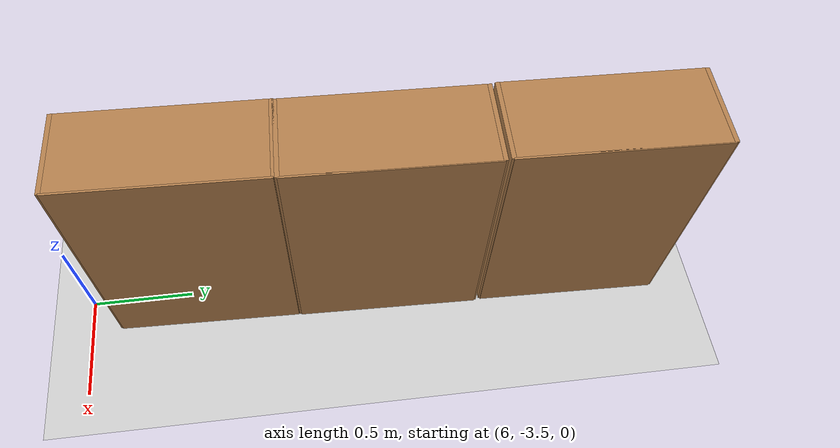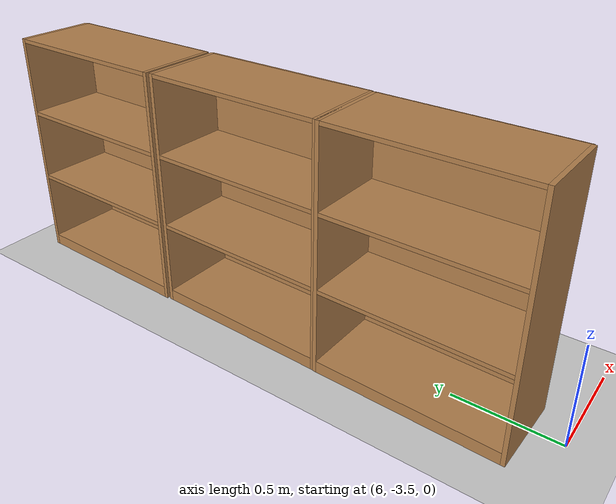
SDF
<sdf version="1.7">
 <world name="default">
  <model name="ground_plane">
   <static>1</static>
   <link name="link">
    <collision name="collision">
     <geometry><plane><normal>0 0 1</normal><size>100 100</size></plane></geometry>
     <surface>
      <contact><collide_bitmask>65535</collide_bitmask></contact>
      <friction><ode><mu>100</mu><mu2>50</mu2></ode></friction>
     </surface>
    </collision>
    <visual name="visual">
     <cast_shadows>0</cast_shadows>
     <geometry><plane><normal>0 0 1</normal><size>100 100</size></plane></geometry>
     <material>
      <script><uri>file://media/materials/scripts/gazebo.material</uri><name>Gazebo/Grey</name></script>
     </material>
    </visual>
   </link>
  </model>
  <model name="Bookshelf_clone">
   <static>1</static>
   <link name="link">
    <inertial><mass>1</mass></inertial>
    <collision name="back">
     <pose>0 0.005 0.6 0 -0 0</pose>
     <geometry><box><size>0.9 0.01 1.2</size></box></geometry>
    </collision>
    <visual name="visual1">
     <pose>0 0.005 0.6 0 -0 0</pose>
     <geometry><box><size>0.9 0.01 1.2</size></box></geometry>
     <material>
      <diffuse>1 1 1 1</diffuse>
      <script><uri>file://media/materials/scripts/gazebo.material</uri><name>Gazebo/Wood</name></script>
      <pbr>
       <metal>
        <albedo_map>https://fuel.ignitionrobotics.org/1.0/openrobotics/models/bookshelf/3/files/bookshelf_diffuse.jpg</albedo_map>
       </metal>
      </pbr>
     </material>
    </visual>
    <collision name="left_side">
     <pose>0.45 -0.195 0.6 0 -0 0</pose>
     <geometry><box><size>0.02 0.4 1.2</size></box></geometry>
    </collision>
    <visual name="visual2">
     <pose>0.45 -0.195 0.6 0 -0 0</pose>
     <geometry><box><size>0.02 0.4 1.2</size></box></geometry>
     <material>
      <diffuse>1 1 1 1</diffuse>
      <script><uri>file://media/materials/scripts/gazebo.material</uri><name>Gazebo/Wood</name></script>
      <pbr>
       <metal>
        <albedo_map>https://fuel.ignitionrobotics.org/1.0/openrobotics/models/bookshelf/3/files/bookshelf_diffuse.jpg</albedo_map>
       </metal>
      </pbr>
     </material>
    </visual>
    <collision name="right_side">
     <pose>-0.45 -0.195 0.6 0 -0 0</pose>
     <geometry><box><size>0.02 0.4 1.2</size></box></geometry>
    </collision>
    <visual name="visual3">
     <pose>-0.45 -0.195 0.6 0 -0 0</pose>
     <geometry><box><size>0.02 0.4 1.2</size></box></geometry>
     <material>
      <diffuse>1 1 1 1</diffuse>
      <script><uri>file://media/materials/scripts/gazebo.material</uri><name>Gazebo/Wood</name></script>
      <pbr>
       <metal>
        <albedo_map>https://fuel.ignitionrobotics.org/1.0/openrobotics/models/bookshelf/3/files/bookshelf_diffuse.jpg</albedo_map>
       </metal>
      </pbr>
     </material>
    </visual>
    <collision name="bottom">
     <pose>0 -0.195 0.03 0 -0 0</pose>
     <geometry><box><size>0.88 0.4 0.06</size></box></geometry>
    </collision>
    <visual name="visual4">
     <pose>0 -0.195 0.03 0 -0 0</pose>
     <geometry><box><size>0.88 0.4 0.06</size></box></geometry>
     <material>
      <diffuse>1 1 1 1</diffuse>
      <script><uri>file://media/materials/scripts/gazebo.material</uri><name>Gazebo/Wood</name></script>
      <pbr>
       <metal>
        <albedo_map>https://fuel.ignitionrobotics.org/1.0/openrobotics/models/bookshelf/3/files/bookshelf_diffuse.jpg</albedo_map>
       </metal>
      </pbr>
     </material>
    </visual>
    <collision name="top">
     <pose>0 -0.195 1.19 0 -0 0</pose>
     <geometry><box><size>0.88 0.4 0.02</size></box></geometry>
    </collision>
    <visual name="visual5">
     <pose>0 -0.195 1.19 0 -0 0</pose>
     <geometry><box><size>0.88 0.4 0.02</size></box></geometry>
     <material>
      <diffuse>1 1 1 1</diffuse>
      <script><uri>file://media/materials/scripts/gazebo.material</uri><name>Gazebo/Wood</name></script>
      <pbr>
       <metal>
        <albedo_map>https://fuel.ignitionrobotics.org/1.0/openrobotics/models/bookshelf/3/files/bookshelf_diffuse.jpg</albedo_map>
       </metal>
      </pbr>
     </material>
    </visual>
    <collision name="low_shelf">
     <pose>0 -0.195 0.43 0 -0 0</pose>
     <geometry><box><size>0.88 0.4 0.02</size></box></geometry>
    </collision>
    <visual name="visual6">
     <pose>0 -0.195 0.43 0 -0 0</pose>
     <geometry><box><size>0.88 0.4 0.02</size></box></geometry>
     <material>
      <diffuse>1 1 1 1</diffuse>
      <script><uri>file://media/materials/scripts/gazebo.material</uri><name>Gazebo/Wood</name></script>
      <pbr>
       <metal>
        <albedo_map>https://fuel.ignitionrobotics.org/1.0/openrobotics/models/bookshelf/3/files/bookshelf_diffuse.jpg</albedo_map>
       </metal>
      </pbr>
     </material>
    </visual>
    <collision name="high_shelf">
     <pose>0 -0.195 0.8 0 -0 0</pose>
     <geometry><box><size>0.88 0.4 0.02</size></box></geometry>
    </collision>
    <visual name="visual7">
     <pose>0 -0.195 0.8 0 -0 0</pose>
     <geometry><box><size>0.88 0.4 0.02</size></box></geometry>
     <material>
      <diffuse>1 1 1 1</diffuse>
      <script><uri>file://media/materials/scripts/gazebo.material</uri><name>Gazebo/Wood</name></script>
      <pbr>
       <metal>
        <albedo_map>https://fuel.ignitionrobotics.org/1.0/openrobotics/models/bookshelf/3/files/bookshelf_diffuse.jpg</albedo_map>
       </metal>
      </pbr>
     </material>
    </visual>
   </link>
   <pose>6.2046 -1.05208 0 0 0 -1.5962</pose>
  </model>
  <model name="Bookshelf_clone_clone">
   <static>1</static>
   <link name="link">
    <inertial><mass>1</mass></inertial>
    <collision name="back">
     <pose>0 0.005 0.6 0 -0 0</pose>
     <geometry><box><size>0.9 0.01 1.2</size></box></geometry>
    </collision>
    <visual name="visual1">
     <pose>0 0.005 0.6 0 -0 0</pose>
     <geometry><box><size>0.9 0.01 1.2</size></box></geometry>
     <material>
      <diffuse>1 1 1 1</diffuse>
      <script><uri>file://media/materials/scripts/gazebo.material</uri><name>Gazebo/Wood</name></script>
      <pbr>
       <metal>
        <albedo_map>https://fuel.ignitionrobotics.org/1.0/openrobotics/models/bookshelf/3/files/bookshelf_diffuse.jpg</albedo_map>
       </metal>
      </pbr>
     </material>
    </visual>
    <collision name="left_side">
     <pose>0.45 -0.195 0.6 0 -0 0</pose>
     <geometry><box><size>0.02 0.4 1.2</size></box></geometry>
    </collision>
    <visual name="visual2">
     <pose>0.45 -0.195 0.6 0 -0 0</pose>
     <geometry><box><size>0.02 0.4 1.2</size></box></geometry>
     <material>
      <diffuse>1 1 1 1</diffuse>
      <script><uri>file://media/materials/scripts/gazebo.material</uri><name>Gazebo/Wood</name></script>
      <pbr>
       <metal>
        <albedo_map>https://fuel.ignitionrobotics.org/1.0/openrobotics/models/bookshelf/3/files/bookshelf_diffuse.jpg</albedo_map>
       </metal>
      </pbr>
     </material>
    </visual>
    <collision name="right_side">
     <pose>-0.45 -0.195 0.6 0 -0 0</pose>
     <geometry><box><size>0.02 0.4 1.2</size></box></geometry>
    </collision>
    <visual name="visual3">
     <pose>-0.45 -0.195 0.6 0 -0 0</pose>
     <geometry><box><size>0.02 0.4 1.2</size></box></geometry>
     <material>
      <diffuse>1 1 1 1</diffuse>
      <script><uri>file://media/materials/scripts/gazebo.material</uri><name>Gazebo/Wood</name></script>
      <pbr>
       <metal>
        <albedo_map>https://fuel.ignitionrobotics.org/1.0/openrobotics/models/bookshelf/3/files/bookshelf_diffuse.jpg</albedo_map>
       </metal>
      </pbr>
     </material>
    </visual>
    <collision name="bottom">
     <pose>0 -0.195 0.03 0 -0 0</pose>
     <geometry><box><size>0.88 0.4 0.06</size></box></geometry>
    </collision>
    <visual name="visual4">
     <pose>0 -0.195 0.03 0 -0 0</pose>
     <geometry><box><size>0.88 0.4 0.06</size></box></geometry>
     <material>
      <diffuse>1 1 1 1</diffuse>
      <script><uri>file://media/materials/scripts/gazebo.material</uri><name>Gazebo/Wood</name></script>
      <pbr>
       <metal>
        <albedo_map>https://fuel.ignitionrobotics.org/1.0/openrobotics/models/bookshelf/3/files/bookshelf_diffuse.jpg</albedo_map>
       </metal>
      </pbr>
     </material>
    </visual>
    <collision name="top">
     <pose>0 -0.195 1.19 0 -0 0</pose>
     <geometry><box><size>0.88 0.4 0.02</size></box></geometry>
    </collision>
    <visual name="visual5">
     <pose>0 -0.195 1.19 0 -0 0</pose>
     <geometry><box><size>0.88 0.4 0.02</size></box></geometry>
     <material>
      <diffuse>1 1 1 1</diffuse>
      <script><uri>file://media/materials/scripts/gazebo.material</uri><name>Gazebo/Wood</name></script>
      <pbr>
       <metal>
        <albedo_map>https://fuel.ignitionrobotics.org/1.0/openrobotics/models/bookshelf/3/files/bookshelf_diffuse.jpg</albedo_map>
       </metal>
      </pbr>
     </material>
    </visual>
    <collision name="low_shelf">
     <pose>0 -0.195 0.43 0 -0 0</pose>
     <geometry><box><size>0.88 0.4 0.02</size></box></geometry>
    </collision>
    <visual name="visual6">
     <pose>0 -0.195 0.43 0 -0 0</pose>
     <geometry><box><size>0.88 0.4 0.02</size></box></geometry>
     <material>
      <diffuse>1 1 1 1</diffuse>
      <script><uri>file://media/materials/scripts/gazebo.material</uri><name>Gazebo/Wood</name></script>
      <pbr>
       <metal>
        <albedo_map>https://fuel.ignitionrobotics.org/1.0/openrobotics/models/bookshelf/3/files/bookshelf_diffuse.jpg</albedo_map>
       </metal>
      </pbr>
     </material>
    </visual>
    <collision name="high_shelf">
     <pose>0 -0.195 0.8 0 -0 0</pose>
     <geometry><box><size>0.88 0.4 0.02</size></box></geometry>
    </collision>
    <visual name="visual7">
     <pose>0 -0.195 0.8 0 -0 0</pose>
     <geometry><box><size>0.88 0.4 0.02</size></box></geometry>
     <material>
      <diffuse>1 1 1 1</diffuse>
      <script><uri>file://media/materials/scripts/gazebo.material</uri><name>Gazebo/Wood</name></script>
      <pbr>
       <metal>
        <albedo_map>https://fuel.ignitionrobotics.org/1.0/openrobotics/models/bookshelf/3/files/bookshelf_diffuse.jpg</albedo_map>
       </metal>
      </pbr>
     </material>
    </visual>
   </link>
   <pose>6.18658 -1.98511 0 0 0 -1.5962</pose>
  </model>
  <model name="Bookshelf_clone_clone_0">
   <static>1</static>
   <link name="link">
    <inertial><mass>1</mass></inertial>
    <collision name="back">
     <pose>0 0.005 0.6 0 -0 0</pose>
     <geometry><box><size>0.9 0.01 1.2</size></box></geometry>
    </collision>
    <visual name="visual1">
     <pose>0 0.005 0.6 0 -0 0</pose>
     <geometry><box><size>0.9 0.01 1.2</size></box></geometry>
     <material>
      <diffuse>1 1 1 1</diffuse>
      <script><uri>file://media/materials/scripts/gazebo.material</uri><name>Gazebo/Wood</name></script>
      <pbr>
       <metal>
        <albedo_map>https://fuel.ignitionrobotics.org/1.0/openrobotics/models/bookshelf/3/files/bookshelf_diffuse.jpg</albedo_map>
       </metal>
      </pbr>
     </material>
    </visual>
    <collision name="left_side">
     <pose>0.45 -0.195 0.6 0 -0 0</pose>
     <geometry><box><size>0.02 0.4 1.2</size></box></geometry>
    </collision>
    <visual name="visual2">
     <pose>0.45 -0.195 0.6 0 -0 0</pose>
     <geometry><box><size>0.02 0.4 1.2</size></box></geometry>
     <material>
      <diffuse>1 1 1 1</diffuse>
      <script><uri>file://media/materials/scripts/gazebo.material</uri><name>Gazebo/Wood</name></script>
      <pbr>
       <metal>
        <albedo_map>https://fuel.ignitionrobotics.org/1.0/openrobotics/models/bookshelf/3/files/bookshelf_diffuse.jpg</albedo_map>
       </metal>
      </pbr>
     </material>
    </visual>
    <collision name="right_side">
     <pose>-0.45 -0.195 0.6 0 -0 0</pose>
     <geometry><box><size>0.02 0.4 1.2</size></box></geometry>
    </collision>
    <visual name="visual3">
     <pose>-0.45 -0.195 0.6 0 -0 0</pose>
     <geometry><box><size>0.02 0.4 1.2</size></box></geometry>
     <material>
      <diffuse>1 1 1 1</diffuse>
      <script><uri>file://media/materials/scripts/gazebo.material</uri><name>Gazebo/Wood</name></script>
      <pbr>
       <metal>
        <albedo_map>https://fuel.ignitionrobotics.org/1.0/openrobotics/models/bookshelf/3/files/bookshelf_diffuse.jpg</albedo_map>
       </metal>
      </pbr>
     </material>
    </visual>
    <collision name="bottom">
     <pose>0 -0.195 0.03 0 -0 0</pose>
     <geometry><box><size>0.88 0.4 0.06</size></box></geometry>
    </collision>
    <visual name="visual4">
     <pose>0 -0.195 0.03 0 -0 0</pose>
     <geometry><box><size>0.88 0.4 0.06</size></box></geometry>
     <material>
      <diffuse>1 1 1 1</diffuse>
      <script><uri>file://media/materials/scripts/gazebo.material</uri><name>Gazebo/Wood</name></script>
      <pbr>
       <metal>
        <albedo_map>https://fuel.ignitionrobotics.org/1.0/openrobotics/models/bookshelf/3/files/bookshelf_diffuse.jpg</albedo_map>
       </metal>
      </pbr>
     </material>
    </visual>
    <collision name="top">
     <pose>0 -0.195 1.19 0 -0 0</pose>
     <geometry><box><size>0.88 0.4 0.02</size></box></geometry>
    </collision>
    <visual name="visual5">
     <pose>0 -0.195 1.19 0 -0 0</pose>
     <geometry><box><size>0.88 0.4 0.02</size></box></geometry>
     <material>
      <diffuse>1 1 1 1</diffuse>
      <script><uri>file://media/materials/scripts/gazebo.material</uri><name>Gazebo/Wood</name></script>
      <pbr>
       <metal>
        <albedo_map>https://fuel.ignitionrobotics.org/1.0/openrobotics/models/bookshelf/3/files/bookshelf_diffuse.jpg</albedo_map>
       </metal>
      </pbr>
     </material>
    </visual>
    <collision name="low_shelf">
     <pose>0 -0.195 0.43 0 -0 0</pose>
     <geometry><box><size>0.88 0.4 0.02</size></box></geometry>
    </collision>
    <visual name="visual6">
     <pose>0 -0.195 0.43 0 -0 0</pose>
     <geometry><box><size>0.88 0.4 0.02</size></box></geometry>
     <material>
      <diffuse>1 1 1 1</diffuse>
      <script><uri>file://media/materials/scripts/gazebo.material</uri><name>Gazebo/Wood</name></script>
      <pbr>
       <metal>
        <albedo_map>https://fuel.ignitionrobotics.org/1.0/openrobotics/models/bookshelf/3/files/bookshelf_diffuse.jpg</albedo_map>
       </metal>
      </pbr>
     </material>
    </visual>
    <collision name="high_shelf">
     <pose>0 -0.195 0.8 0 -0 0</pose>
     <geometry><box><size>0.88 0.4 0.02</size></box></geometry>
    </collision>
    <visual name="visual7">
     <pose>0 -0.195 0.8 0 -0 0</pose>
     <geometry><box><size>0.88 0.4 0.02</size></box></geometry>
     <material>
      <diffuse>1 1 1 1</diffuse>
      <script><uri>file://media/materials/scripts/gazebo.material</uri><name>Gazebo/Wood</name></script>
      <pbr>
       <metal>
        <albedo_map>https://fuel.ignitionrobotics.org/1.0/openrobotics/models/bookshelf/3/files/bookshelf_diffuse.jpg</albedo_map>
       </metal>
      </pbr>
     </material>
    </visual>
   </link>
   <pose>6.16097 -2.89816 0 0 0 -1.5962</pose>
  </model>
 </world>
</sdf>
